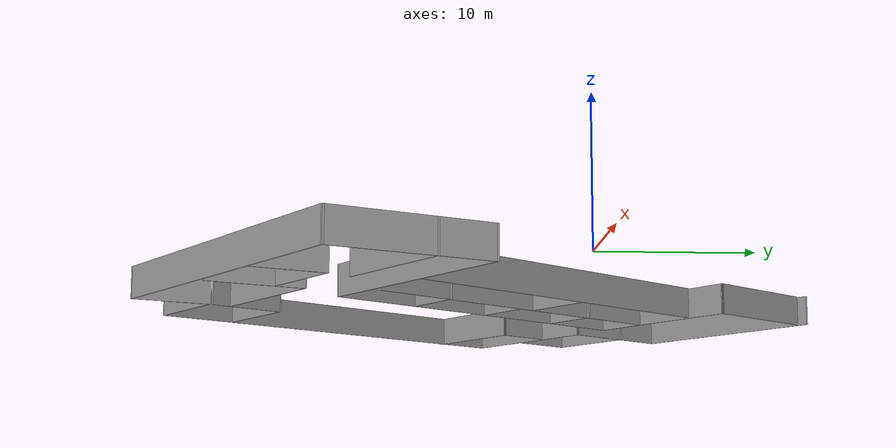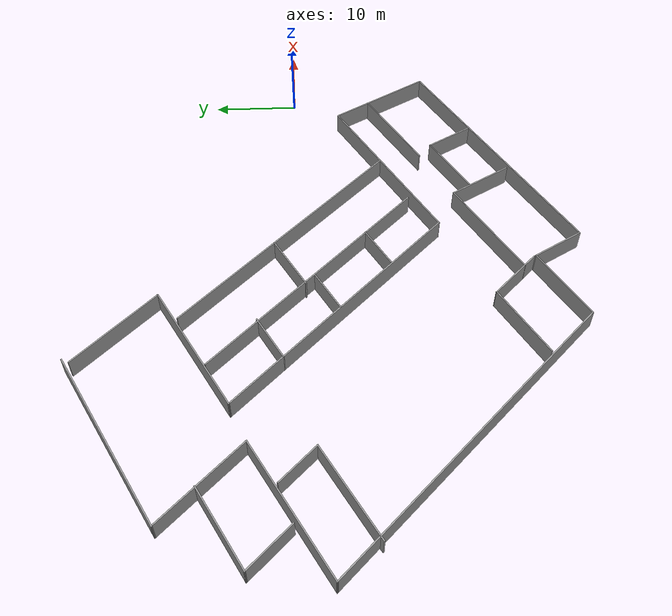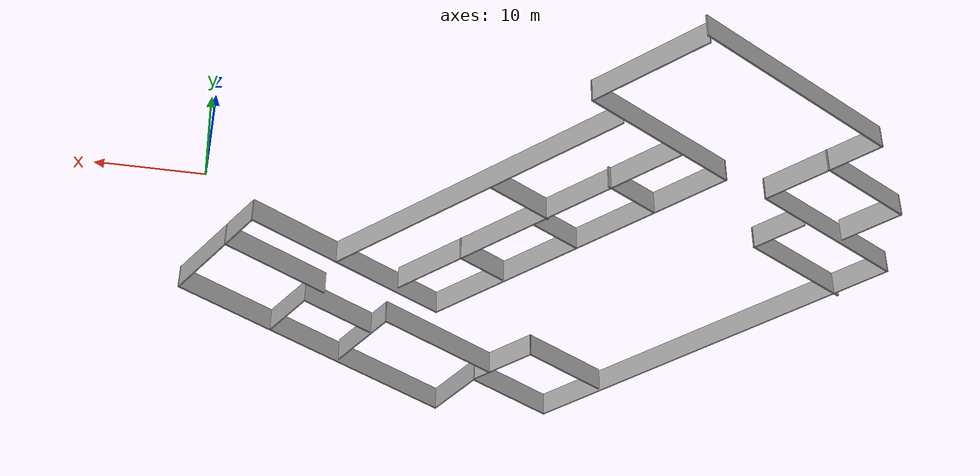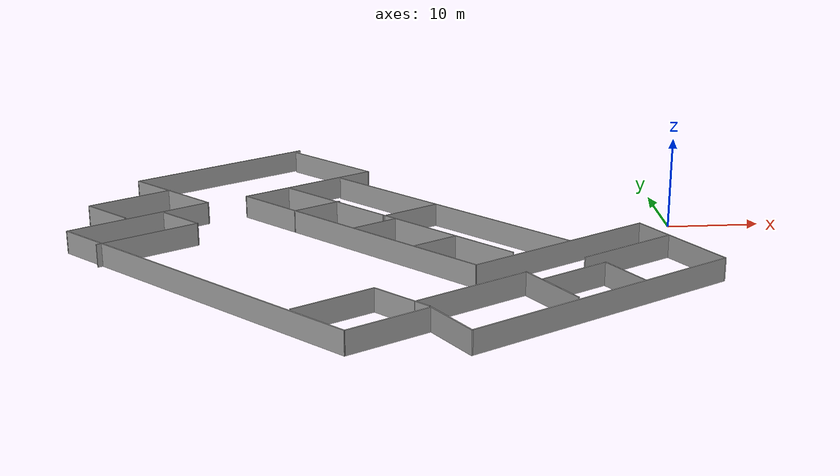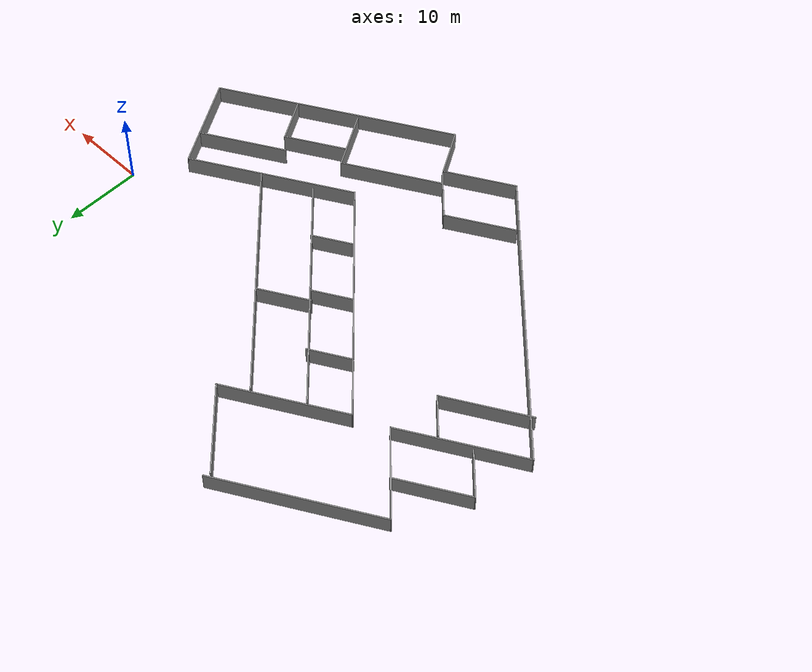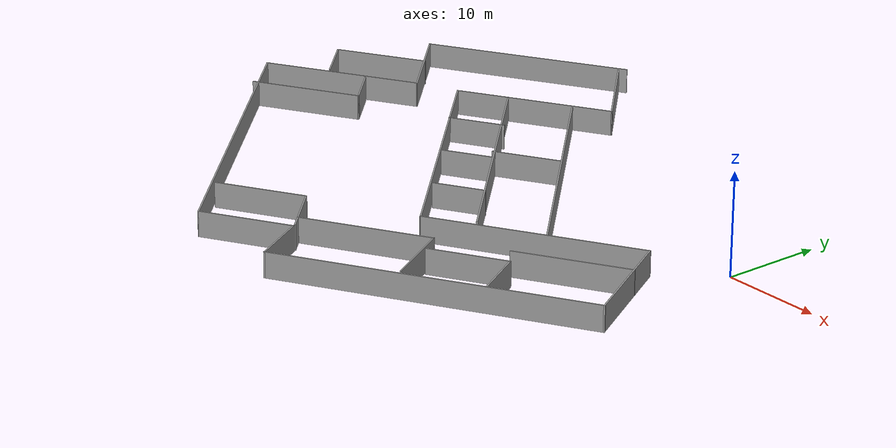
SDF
<?xml version='1.0'?>
<sdf version='1.6'>
  <model name='robot_1'>
    <pose frame=''>-31.5453 -4.00431 0 0 -0 0</pose>
    <link name='Wall_0'>
      <collision name='Wall_0_Collision'>
        <geometry>
          <box>
            <size>21.5 0.15 2.5</size>
          </box>
        </geometry>
        <pose frame=''>0 0 1.25 0 -0 0</pose>
      </collision>
      <visual name='Wall_0_Visual'>
        <pose frame=''>0 0 1.25 0 -0 0</pose>
        <geometry>
          <box>
            <size>21.5 0.15 2.5</size>
          </box>
        </geometry>
        <material>
          <script>
            <uri>file://media/materials/scripts/gazebo.material</uri>
            <name>Gazebo/Grey</name>
          </script>
          <ambient>1 1 1 1</ambient>
        </material>
        <meta>
          <layer>0</layer>
        </meta>
      </visual>
      <pose frame=''>-18.2733 22.7783 0 0 -0 -2.61799</pose>
    </link>
    <link name='Wall_10'>
      <collision name='Wall_10_Collision'>
        <geometry>
          <box>
            <size>33 0.15 2.5</size>
          </box>
        </geometry>
        <pose frame=''>0 0 1.25 0 -0 0</pose>
      </collision>
      <visual name='Wall_10_Visual'>
        <pose frame=''>0 0 1.25 0 -0 0</pose>
        <geometry>
          <box>
            <size>33 0.15 2.5</size>
          </box>
        </geometry>
        <material>
          <script>
            <uri>file://media/materials/scripts/gazebo.material</uri>
            <name>Gazebo/Grey</name>
          </script>
          <ambient>1 1 1 1</ambient>
        </material>
        <meta>
          <layer>0</layer>
        </meta>
      </visual>
      <pose frame=''>-3.31835 -0.714692 0 0 -0 2.35619</pose>
    </link>
    <link name='Wall_11'>
      <collision name='Wall_11_Collision'>
        <geometry>
          <box>
            <size>16.25 0.15 2.5</size>
          </box>
        </geometry>
        <pose frame=''>0 0 1.25 0 -0 0</pose>
      </collision>
      <visual name='Wall_11_Visual'>
        <pose frame=''>0 0 1.25 0 -0 0</pose>
        <geometry>
          <box>
            <size>16.25 0.15 2.5</size>
          </box>
        </geometry>
        <material>
          <script>
            <uri>file://media/materials/scripts/gazebo.material</uri>
            <name>Gazebo/Grey</name>
          </script>
          <ambient>1 1 1 1</ambient>
        </material>
        <meta>
          <layer>0</layer>
        </meta>
      </visual>
      <pose frame=''>-7.96108 14.9245 0 0 -0 0.523599</pose>
    </link>
    <link name='Wall_12'>
      <collision name='Wall_12_Collision'>
        <geometry>
          <box>
            <size>12 0.15 2.5</size>
          </box>
        </geometry>
        <pose frame=''>0 0 1.25 0 -0 0</pose>
      </collision>
      <visual name='Wall_12_Visual'>
        <pose frame=''>0 0 1.25 0 -0 0</pose>
        <geometry>
          <box>
            <size>12 0.15 2.5</size>
          </box>
        </geometry>
        <material>
          <script>
            <uri>file://media/materials/scripts/gazebo.material</uri>
            <name>Gazebo/Grey</name>
          </script>
          <ambient>1 1 1 1</ambient>
        </material>
        <meta>
          <layer>0</layer>
        </meta>
      </visual>
      <pose frame=''>-5.17918 23.1391 0 0 -0 2.35619</pose>
    </link>
    <link name='Wall_14'>
      <collision name='Wall_14_Collision'>
        <geometry>
          <box>
            <size>32 0.15 2.5</size>
          </box>
        </geometry>
        <pose frame=''>0 0 1.25 0 -0 0</pose>
      </collision>
      <visual name='Wall_14_Visual'>
        <pose frame=''>0 0 1.25 0 -0 0</pose>
        <geometry>
          <box>
            <size>32 0.15 2.5</size>
          </box>
        </geometry>
        <material>
          <script>
            <uri>file://media/materials/scripts/gazebo.material</uri>
            <name>Gazebo/Grey</name>
          </script>
          <ambient>1 1 1 1</ambient>
        </material>
        <meta>
          <layer>0</layer>
        </meta>
      </visual>
      <pose frame=''>1.11165 2.14563 0 0 -0 -0.785398</pose>
    </link>
    <link name='Wall_16'>
      <collision name='Wall_16_Collision'>
        <geometry>
          <box>
            <size>32.5 0.15 2.5</size>
          </box>
        </geometry>
        <pose frame=''>0 0 1.25 0 -0 0</pose>
      </collision>
      <visual name='Wall_16_Visual'>
        <pose frame=''>0 0 1.25 0 -0 0</pose>
        <geometry>
          <box>
            <size>32.5 0.15 2.5</size>
          </box>
        </geometry>
        <material>
          <script>
            <uri>file://media/materials/scripts/gazebo.material</uri>
            <name>Gazebo/Grey</name>
          </script>
          <ambient>1 1 1 1</ambient>
        </material>
        <meta>
          <layer>0</layer>
        </meta>
      </visual>
      <pose frame=''>7.22864 5.18647 0 0 -0 -0.785398</pose>
    </link>
    <link name='Wall_18'>
      <collision name='Wall_18_Collision'>
        <geometry>
          <box>
            <size>5.75 0.15 2.5</size>
          </box>
        </geometry>
        <pose frame=''>0 0 1.25 0 -0 0</pose>
      </collision>
      <visual name='Wall_18_Visual'>
        <pose frame=''>0 0 1.25 0 -0 0</pose>
        <geometry>
          <box>
            <size>5.75 0.15 2.5</size>
          </box>
        </geometry>
        <material>
          <script>
            <uri>file://media/materials/scripts/gazebo.material</uri>
            <name>Gazebo/Grey</name>
          </script>
          <ambient>1 1 1 1</ambient>
        </material>
        <meta>
          <layer>0</layer>
        </meta>
      </visual>
      <pose frame=''>-7.10538 6.88602 0 0 -0 0.523599</pose>
    </link>
    <link name='Wall_2'>
      <collision name='Wall_2_Collision'>
        <geometry>
          <box>
            <size>12 0.15 2.5</size>
          </box>
        </geometry>
        <pose frame=''>0 0 1.25 0 -0 0</pose>
      </collision>
      <visual name='Wall_2_Visual'>
        <pose frame=''>0 0 1.25 0 -0 0</pose>
        <geometry>
          <box>
            <size>12 0.15 2.5</size>
          </box>
        </geometry>
        <material>
          <script>
            <uri>file://media/materials/scripts/gazebo.material</uri>
            <name>Gazebo/Grey</name>
          </script>
          <ambient>1 1 1 1</ambient>
        </material>
        <meta>
          <layer>0</layer>
        </meta>
      </visual>
      <pose frame=''>-23.3285 13.2512 0 0 -0 -0.785398</pose>
    </link>
    <link name='Wall_20'>
      <collision name='Wall_20_Collision'>
        <geometry>
          <box>
            <size>5.25 0.15 2.5</size>
          </box>
        </geometry>
        <pose frame=''>0 0 1.25 0 -0 0</pose>
      </collision>
      <visual name='Wall_20_Visual'>
        <pose frame=''>0 0 1.25 0 -0 0</pose>
        <geometry>
          <box>
            <size>5.25 0.15 2.5</size>
          </box>
        </geometry>
        <material>
          <script>
            <uri>file://media/materials/scripts/gazebo.material</uri>
            <name>Gazebo/Grey</name>
          </script>
          <ambient>1 1 1 1</ambient>
        </material>
        <meta>
          <layer>0</layer>
        </meta>
      </visual>
      <pose frame=''>-1.13416 0.697043 0 0 -0 0.523599</pose>
    </link>
    <link name='Wall_22'>
      <collision name='Wall_22_Collision'>
        <geometry>
          <box>
            <size>5.25 0.15 2.5</size>
          </box>
        </geometry>
        <pose frame=''>0 0 1.25 0 -0 0</pose>
      </collision>
      <visual name='Wall_22_Visual'>
        <pose frame=''>0 0 1.25 0 -0 0</pose>
        <geometry>
          <box>
            <size>5.25 0.15 2.5</size>
          </box>
        </geometry>
        <material>
          <script>
            <uri>file://media/materials/scripts/gazebo.material</uri>
            <name>Gazebo/Grey</name>
          </script>
          <ambient>1 1 1 1</ambient>
        </material>
        <meta>
          <layer>0</layer>
        </meta>
      </visual>
      <pose frame=''>4.92981 -5.11942 0 0 -0 0.523599</pose>
    </link>
    <link name='Wall_25'>
      <collision name='Wall_25_Collision'>
        <geometry>
          <box>
            <size>7 0.15 2.5</size>
          </box>
        </geometry>
        <pose frame=''>0 0 1.25 0 -0 0</pose>
      </collision>
      <visual name='Wall_25_Visual'>
        <pose frame=''>0 0 1.25 0 -0 0</pose>
        <geometry>
          <box>
            <size>7 0.15 2.5</size>
          </box>
        </geometry>
        <material>
          <script>
            <uri>file://media/materials/scripts/gazebo.material</uri>
            <name>Gazebo/Grey</name>
          </script>
          <ambient>1 1 1 1</ambient>
        </material>
        <meta>
          <layer>0</layer>
        </meta>
      </visual>
      <pose frame=''>2.96498 4.72342 0 0 -0 0.523599</pose>
    </link>
    <link name='Wall_27'>
      <collision name='Wall_27_Collision'>
        <geometry>
          <box>
            <size>9.75 0.15 2.5</size>
          </box>
        </geometry>
        <pose frame=''>0 0 1.25 0 -0 0</pose>
      </collision>
      <visual name='Wall_27_Visual'>
        <pose frame=''>0 0 1.25 0 -0 0</pose>
        <geometry>
          <box>
            <size>9.75 0.15 2.5</size>
          </box>
        </geometry>
        <material>
          <script>
            <uri>file://media/materials/scripts/gazebo.material</uri>
            <name>Gazebo/Grey</name>
          </script>
          <ambient>1 1 1 1</ambient>
        </material>
        <meta>
          <layer>0</layer>
        </meta>
      </visual>
      <pose frame=''>-27.8967 11.3511 0 0 -0 0.523599</pose>
    </link>
    <link name='Wall_29'>
      <collision name='Wall_29_Collision'>
        <geometry>
          <box>
            <size>6.25 0.15 2.5</size>
          </box>
        </geometry>
        <pose frame=''>0 0 1.25 0 -0 0</pose>
      </collision>
      <visual name='Wall_29_Visual'>
        <pose frame=''>0 0 1.25 0 -0 0</pose>
        <geometry>
          <box>
            <size>6.25 0.15 2.5</size>
          </box>
        </geometry>
        <material>
          <script>
            <uri>file://media/materials/scripts/gazebo.material</uri>
            <name>Gazebo/Grey</name>
          </script>
          <ambient>1 1 1 1</ambient>
        </material>
        <meta>
          <layer>0</layer>
        </meta>
      </visual>
      <pose frame=''>-29.8969 6.79447 0 0 -0 -0.785398</pose>
    </link>
    <link name='Wall_3'>
      <collision name='Wall_3_Collision'>
        <geometry>
          <box>
            <size>16.5 0.15 2.5</size>
          </box>
        </geometry>
        <pose frame=''>0 0 1.25 0 -0 0</pose>
      </collision>
      <visual name='Wall_3_Visual'>
        <pose frame=''>0 0 1.25 0 -0 0</pose>
        <geometry>
          <box>
            <size>16.5 0.15 2.5</size>
          </box>
        </geometry>
        <material>
          <script>
            <uri>file://media/materials/scripts/gazebo.material</uri>
            <name>Gazebo/Grey</name>
          </script>
          <ambient>1 1 1 1</ambient>
        </material>
        <meta>
          <layer>0</layer>
        </meta>
      </visual>
      <pose frame=''>-26.2187 4.97413 0 0 -0 -2.61799</pose>
    </link>
    <link name='Wall_31'>
      <collision name='Wall_31_Collision'>
        <geometry>
          <box>
            <size>11.5 0.15 2.5</size>
          </box>
        </geometry>
        <pose frame=''>0 0 1.25 0 -0 0</pose>
      </collision>
      <visual name='Wall_31_Visual'>
        <pose frame=''>0 0 1.25 0 -0 0</pose>
        <geometry>
          <box>
            <size>11.5 0.15 2.5</size>
          </box>
        </geometry>
        <material>
          <script>
            <uri>file://media/materials/scripts/gazebo.material</uri>
            <name>Gazebo/Grey</name>
          </script>
          <ambient>1 1 1 1</ambient>
        </material>
        <meta>
          <layer>0</layer>
        </meta>
      </visual>
      <pose frame=''>-24.7875 -0.586811 0 0 -0 0.523599</pose>
    </link>
    <link name='Wall_32'>
      <collision name='Wall_32_Collision'>
        <geometry>
          <box>
            <size>5.5 0.15 2.5</size>
          </box>
        </geometry>
        <pose frame=''>0 0 1.25 0 -0 0</pose>
      </collision>
      <visual name='Wall_32_Visual'>
        <pose frame=''>0 0 1.25 0 -0 0</pose>
        <geometry>
          <box>
            <size>5.5 0.15 2.5</size>
          </box>
        </geometry>
        <material>
          <script>
            <uri>file://media/materials/scripts/gazebo.material</uri>
            <name>Gazebo/Grey</name>
          </script>
          <ambient>1 1 1 1</ambient>
        </material>
        <meta>
          <layer>0</layer>
        </meta>
      </visual>
      <pose frame=''>-21.7644 4.1422 0 0 -0 2.35619</pose>
    </link>
    <link name='Wall_35'>
      <collision name='Wall_35_Collision'>
        <geometry>
          <box>
            <size>7 0.15 2.5</size>
          </box>
        </geometry>
        <pose frame=''>0 0 1.25 0 -0 0</pose>
      </collision>
      <visual name='Wall_35_Visual'>
        <pose frame=''>0 0 1.25 0 -0 0</pose>
        <geometry>
          <box>
            <size>7 0.15 2.5</size>
          </box>
        </geometry>
        <material>
          <script>
            <uri>file://media/materials/scripts/gazebo.material</uri>
            <name>Gazebo/Grey</name>
          </script>
          <ambient>1 1 1 1</ambient>
        </material>
        <meta>
          <layer>0</layer>
        </meta>
      </visual>
      <pose frame=''>0.423359 -19.9369 0 0 -0 2.35619</pose>
    </link>
    <link name='Wall_36'>
      <collision name='Wall_36_Collision'>
        <geometry>
          <box>
            <size>9.25 0.15 2.5</size>
          </box>
        </geometry>
        <pose frame=''>0 0 1.25 0 -0 0</pose>
      </collision>
      <visual name='Wall_36_Visual'>
        <pose frame=''>0 0 1.25 0 -0 0</pose>
        <geometry>
          <box>
            <size>9.25 0.15 2.5</size>
          </box>
        </geometry>
        <material>
          <script>
            <uri>file://media/materials/scripts/gazebo.material</uri>
            <name>Gazebo/Grey</name>
          </script>
          <ambient>1 1 1 1</ambient>
        </material>
        <meta>
          <layer>0</layer>
        </meta>
      </visual>
      <pose frame=''>-5.9389 -19.7901 0 0 -0 -2.61799</pose>
    </link>
    <link name='Wall_38'>
      <collision name='Wall_38_Collision'>
        <geometry>
          <box>
            <size>13.25 0.15 2.5</size>
          </box>
        </geometry>
        <pose frame=''>0 0 1.25 0 -0 0</pose>
      </collision>
      <visual name='Wall_38_Visual'>
        <pose frame=''>0 0 1.25 0 -0 0</pose>
        <geometry>
          <box>
            <size>13.25 0.15 2.5</size>
          </box>
        </geometry>
        <material>
          <script>
            <uri>file://media/materials/scripts/gazebo.material</uri>
            <name>Gazebo/Grey</name>
          </script>
          <ambient>1 1 1 1</ambient>
        </material>
        <meta>
          <layer>0</layer>
        </meta>
      </visual>
      <pose frame=''>7.28012 -17.8462 0 0 -0 0.523599</pose>
    </link>
    <link name='Wall_39'>
      <collision name='Wall_39_Collision'>
        <geometry>
          <box>
            <size>8 0.15 2.5</size>
          </box>
        </geometry>
        <pose frame=''>0 0 1.25 0 -0 0</pose>
      </collision>
      <visual name='Wall_39_Visual'>
        <pose frame=''>0 0 1.25 0 -0 0</pose>
        <geometry>
          <box>
            <size>8 0.15 2.5</size>
          </box>
        </geometry>
        <material>
          <script>
            <uri>file://media/materials/scripts/gazebo.material</uri>
            <name>Gazebo/Grey</name>
          </script>
          <ambient>1 1 1 1</ambient>
        </material>
        <meta>
          <layer>0</layer>
        </meta>
      </visual>
      <pose frame=''>14.9151 -17.9704 0 0 -0 -1.0472</pose>
    </link>
    <link name='Wall_4'>
      <collision name='Wall_4_Collision'>
        <geometry>
          <box>
            <size>40 0.15 2.5</size>
          </box>
        </geometry>
        <pose frame=''>0 0 1.25 0 -0 0</pose>
      </collision>
      <visual name='Wall_4_Visual'>
        <pose frame=''>0 0 1.25 0 -0 0</pose>
        <geometry>
          <box>
            <size>40 0.15 2.5</size>
          </box>
        </geometry>
        <material>
          <script>
            <uri>file://media/materials/scripts/gazebo.material</uri>
            <name>Gazebo/Grey</name>
          </script>
          <ambient>1 1 1 1</ambient>
        </material>
        <meta>
          <layer>0</layer>
        </meta>
      </visual>
      <pose frame=''>-19.2093 -13.2025 0 0 -0 -0.785398</pose>
    </link>
    <link name='Wall_41'>
      <collision name='Wall_41_Collision'>
        <geometry>
          <box>
            <size>8 0.15 2.5</size>
          </box>
        </geometry>
        <pose frame=''>0 0 1.25 0 -0 0</pose>
      </collision>
      <visual name='Wall_41_Visual'>
        <pose frame=''>0 0 1.25 0 -0 0</pose>
        <geometry>
          <box>
            <size>8 0.15 2.5</size>
          </box>
        </geometry>
        <material>
          <script>
            <uri>file://media/materials/scripts/gazebo.material</uri>
            <name>Gazebo/Grey</name>
          </script>
          <ambient>1 1 1 1</ambient>
        </material>
        <meta>
          <layer>0</layer>
        </meta>
      </visual>
      <pose frame=''>17.7535 -14.5798 0 0 -0 0.523599</pose>
    </link>
    <link name='Wall_42'>
      <collision name='Wall_42_Collision'>
        <geometry>
          <box>
            <size>6 0.15 2.5</size>
          </box>
        </geometry>
        <pose frame=''>0 0 1.25 0 -0 0</pose>
      </collision>
      <visual name='Wall_42_Visual'>
        <pose frame=''>0 0 1.25 0 -0 0</pose>
        <geometry>
          <box>
            <size>6 0.15 2.5</size>
          </box>
        </geometry>
        <material>
          <script>
            <uri>file://media/materials/scripts/gazebo.material</uri>
            <name>Gazebo/Grey</name>
          </script>
          <ambient>1 1 1 1</ambient>
        </material>
        <meta>
          <layer>0</layer>
        </meta>
      </visual>
      <pose frame=''>22.6152 -15.1504 0 0 -0 -1.0472</pose>
    </link>
    <link name='Wall_44'>
      <collision name='Wall_44_Collision'>
        <geometry>
          <box>
            <size>11.5 0.15 2.5</size>
          </box>
        </geometry>
        <pose frame=''>0 0 1.25 0 -0 0</pose>
      </collision>
      <visual name='Wall_44_Visual'>
        <pose frame=''>0 0 1.25 0 -0 0</pose>
        <geometry>
          <box>
            <size>11.5 0.15 2.5</size>
          </box>
        </geometry>
        <material>
          <script>
            <uri>file://media/materials/scripts/gazebo.material</uri>
            <name>Gazebo/Grey</name>
          </script>
          <ambient>1 1 1 1</ambient>
        </material>
        <meta>
          <layer>0</layer>
        </meta>
      </visual>
      <pose frame=''>24.343 -8.25959 0 0 -0 0.523599</pose>
    </link>
    <link name='Wall_5'>
      <collision name='Wall_5_Collision'>
        <geometry>
          <box>
            <size>9.5 0.15 2.5</size>
          </box>
        </geometry>
        <pose frame=''>0 0 1.25 0 -0 0</pose>
      </collision>
      <visual name='Wall_5_Visual'>
        <pose frame=''>0 0 1.25 0 -0 0</pose>
        <geometry>
          <box>
            <size>9.5 0.15 2.5</size>
          </box>
        </geometry>
        <material>
          <script>
            <uri>file://media/materials/scripts/gazebo.material</uri>
            <name>Gazebo/Grey</name>
          </script>
          <ambient>1 1 1 1</ambient>
        </material>
        <meta>
          <layer>0</layer>
        </meta>
      </visual>
      <pose frame=''>-1.07154 -24.9541 0 0 -0 0.523599</pose>
    </link>
    <link name='Wall_6'>
      <collision name='Wall_6_Collision'>
        <geometry>
          <box>
            <size>6.5 0.15 2.5</size>
          </box>
        </geometry>
        <pose frame=''>0 0 1.25 0 -0 0</pose>
      </collision>
      <visual name='Wall_6_Visual'>
        <pose frame=''>0 0 1.25 0 -0 0</pose>
        <geometry>
          <box>
            <size>6.5 0.15 2.5</size>
          </box>
        </geometry>
        <material>
          <script>
            <uri>file://media/materials/scripts/gazebo.material</uri>
            <name>Gazebo/Grey</name>
          </script>
          <ambient>1 1 1 1</ambient>
        </material>
        <meta>
          <layer>0</layer>
        </meta>
      </visual>
      <pose frame=''>4.56463 -25.3662 0 0 -0 -1.0472</pose>
    </link>
    <link name='Wall_7'>
      <collision name='Wall_7_Collision'>
        <geometry>
          <box>
            <size>31.5 0.15 2.5</size>
          </box>
        </geometry>
        <pose frame=''>0 0 1.25 0 -0 0</pose>
      </collision>
      <visual name='Wall_7_Visual'>
        <pose frame=''>0 0 1.25 0 -0 0</pose>
        <geometry>
          <box>
            <size>31.5 0.15 2.5</size>
          </box>
        </geometry>
        <material>
          <script>
            <uri>file://media/materials/scripts/gazebo.material</uri>
            <name>Gazebo/Grey</name>
          </script>
          <ambient>1 1 1 1</ambient>
        </material>
        <meta>
          <layer>0</layer>
        </meta>
      </visual>
      <pose frame=''>19.7271 -20.2783 0 0 -0 0.523599</pose>
    </link>
    <link name='Wall_8'>
      <collision name='Wall_8_Collision'>
        <geometry>
          <box>
            <size>12.75 0.15 2.5</size>
          </box>
        </geometry>
        <pose frame=''>0 0 1.25 0 -0 0</pose>
      </collision>
      <visual name='Wall_8_Visual'>
        <pose frame=''>0 0 1.25 0 -0 0</pose>
        <geometry>
          <box>
            <size>12.75 0.15 2.5</size>
          </box>
        </geometry>
        <material>
          <script>
            <uri>file://media/materials/scripts/gazebo.material</uri>
            <name>Gazebo/Grey</name>
          </script>
          <ambient>1 1 1 1</ambient>
        </material>
        <meta>
          <layer>0</layer>
        </meta>
      </visual>
      <pose frame=''>30.152 -6.98488 0 0 -0 2.0944</pose>
    </link>
    <link name='Wall_9'>
      <collision name='Wall_9_Collision'>
        <geometry>
          <box>
            <size>21.75 0.15 2.5</size>
          </box>
        </geometry>
        <pose frame=''>0 0 1.25 0 -0 0</pose>
      </collision>
      <visual name='Wall_9_Visual'>
        <pose frame=''>0 0 1.25 0 -0 0</pose>
        <geometry>
          <box>
            <size>21.75 0.15 2.5</size>
          </box>
        </geometry>
        <material>
          <script>
            <uri>file://media/materials/scripts/gazebo.material</uri>
            <name>Gazebo/Grey</name>
          </script>
          <ambient>1 1 1 1</ambient>
        </material>
        <meta>
          <layer>0</layer>
        </meta>
      </visual>
      <pose frame=''>17.649 -6.92892 0 0 -0 -2.61799</pose>
    </link>
    <static>1</static>
  </model>
</sdf>
